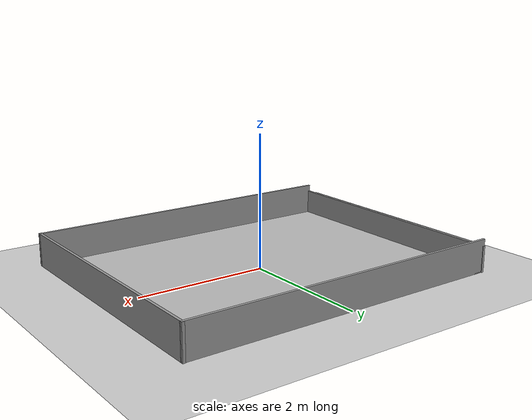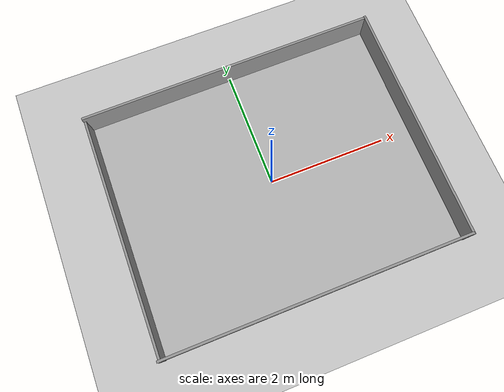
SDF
<sdf version="1.7">
 <world name="default">
  <light name="sun" type="directional">
   <pose>0 0 10 0 -0 0</pose>
   <diffuse>0.8 0.8 0.8 1</diffuse>
   <specular>0.2 0.2 0.2 1</specular>
   <attenuation>
    <range>1000</range>
    <constant>0.9</constant>
    <linear>0.01</linear>
    <quadratic>0.001</quadratic>
   </attenuation>
   <direction>-0.5 0.1 -0.9</direction>
   <spot><inner_angle>0</inner_angle><outer_angle>0</outer_angle><falloff>0</falloff></spot>
  </light>
  <model name="ground_plane">
   <static>1</static>
   <link name="link">
    <collision name="collision">
     <geometry><plane><normal>0 0 1</normal><size>100 100</size></plane></geometry>
     <surface><friction><ode><mu>100</mu><mu2>50</mu2></ode></friction></surface>
    </collision>
    <visual name="visual">
     <cast_shadows>0</cast_shadows>
     <geometry><plane><normal>0 0 1</normal><size>100 100</size></plane></geometry>
     <material>
      <script><uri>file://media/materials/scripts/gazebo.material</uri><name>Gazebo/Grey</name></script>
     </material>
    </visual>
   </link>
  </model>
  <gravity>0 0 -9.8</gravity>
  <magnetic_field>6e-06 2.3e-05 -4.2e-05</magnetic_field>
  <atmosphere type="adiabatic"/>
  <physics type="ode">
   <max_step_size>0.001</max_step_size>
   <real_time_factor>1</real_time_factor>
   <real_time_update_rate>1000</real_time_update_rate>
  </physics>
  <scene><ambient>0.4 0.4 0.4 1</ambient><background>0.7 0.7 0.7 1</background><shadows>1</shadows></scene>
  <spherical_coordinates>
   <surface_model>EARTH_WGS84</surface_model>
   <latitude_deg>0</latitude_deg>
   <longitude_deg>0</longitude_deg>
   <elevation>0</elevation>
   <heading_deg>0</heading_deg>
  </spherical_coordinates>
  <model name="rk_square">
   <pose>-0.002809 0.005953 0 0 -0 0</pose>
   <link name="Wall_0">
    <collision name="Wall_0_Collision">
     <geometry><box><size>4.02911 0.04 0.4</size></box></geometry>
     <pose>0 0 0.2 0 -0 0</pose>
    </collision>
    <visual name="Wall_0_Visual">
     <pose>0 0 0.2 0 -0 0</pose>
     <geometry><box><size>4.02911 0.04 0.4</size></box></geometry>
     <material>
      <script><uri>file://media/materials/scripts/gazebo.material</uri><name>Gazebo/Grey</name></script>
      <ambient>1 1 1 1</ambient>
     </material>
     <meta><layer>0</layer></meta>
    </visual>
    <pose>-2.51019 -0.017655 0 0 -0 1.56779</pose>
   </link>
   <link name="Wall_1">
    <collision name="Wall_1_Collision">
     <geometry><box><size>5.06062 0.04 0.5</size></box></geometry>
     <pose>0 0 0.25 0 -0 0</pose>
    </collision>
    <visual name="Wall_1_Visual">
     <pose>0 0 0.25 0 -0 0</pose>
     <geometry><box><size>5.06062 0.04 0.5</size></box></geometry>
     <material>
      <script><uri>file://media/materials/scripts/gazebo.material</uri><name>Gazebo/Grey</name></script>
      <ambient>1 1 1 1</ambient>
     </material>
     <meta><layer>0</layer></meta>
    </visual>
    <pose>0.006055 1.98588 0 0 -0 0.007045</pose>
   </link>
   <link name="Wall_3">
    <collision name="Wall_3_Collision">
     <geometry><box><size>4.06346 0.04 0.5</size></box></geometry>
     <pose>0 0 0.25 0 -0 0</pose>
    </collision>
    <visual name="Wall_3_Visual">
     <pose>0 0 0.25 0 -0 0</pose>
     <geometry><box><size>4.06346 0.04 0.5</size></box></geometry>
     <material>
      <script><uri>file://media/materials/scripts/gazebo.material</uri><name>Gazebo/Grey</name></script>
      <ambient>1 1 1 1</ambient>
     </material>
     <meta><layer>0</layer></meta>
    </visual>
    <pose>2.51606 0.000529 0 0 -0 -1.57092</pose>
   </link>
   <link name="Wall_5">
    <collision name="Wall_5_Collision">
     <geometry><box><size>5.07249 0.04 0.5</size></box></geometry>
     <pose>0 0 0.25 0 -0 0</pose>
    </collision>
    <visual name="Wall_5_Visual">
     <pose>0 0 0.25 0 -0 0</pose>
     <geometry><box><size>5.07249 0.04 0.5</size></box></geometry>
     <material>
      <script><uri>file://media/materials/scripts/gazebo.material</uri><name>Gazebo/Grey</name></script>
      <ambient>1 1 1 1</ambient>
     </material>
     <meta><layer>0</layer></meta>
    </visual>
    <pose>-0.000191 -2.00414 0 0 -0 0.000199</pose>
   </link>
   <static>1</static>
  </model>
  <model name="rk_map">
   <pose>-0.007314 -0.004777 0.01 0 -0 0</pose>
   <static>1</static>
   <link name="link">
    <inertial>
     <mass>0.5</mass>
     <inertia><ixx>0.001</ixx><ixy>0</ixy><ixz>0</ixz><iyy>0.001</iyy><iyz>0</iyz><izz>0.001</izz></inertia>
    </inertial>
    <collision name="collision">
     <geometry><box><size>5 4 0.01</size></box></geometry>
     <max_contacts>100</max_contacts>
    </collision>
    <visual name="visual">
     <cast_shadows>0</cast_shadows>
     <geometry><box><size>5 4 0.01</size></box></geometry>
     <material>
      <script>
       <uri>model://rk_map/materials/scripts</uri>
       <uri>model://rk_map/materials/textures</uri>
       <name>MyGround/rk_map</name>
      </script>
     </material>
    </visual>
   </link>
  </model>
 </world>
</sdf>
